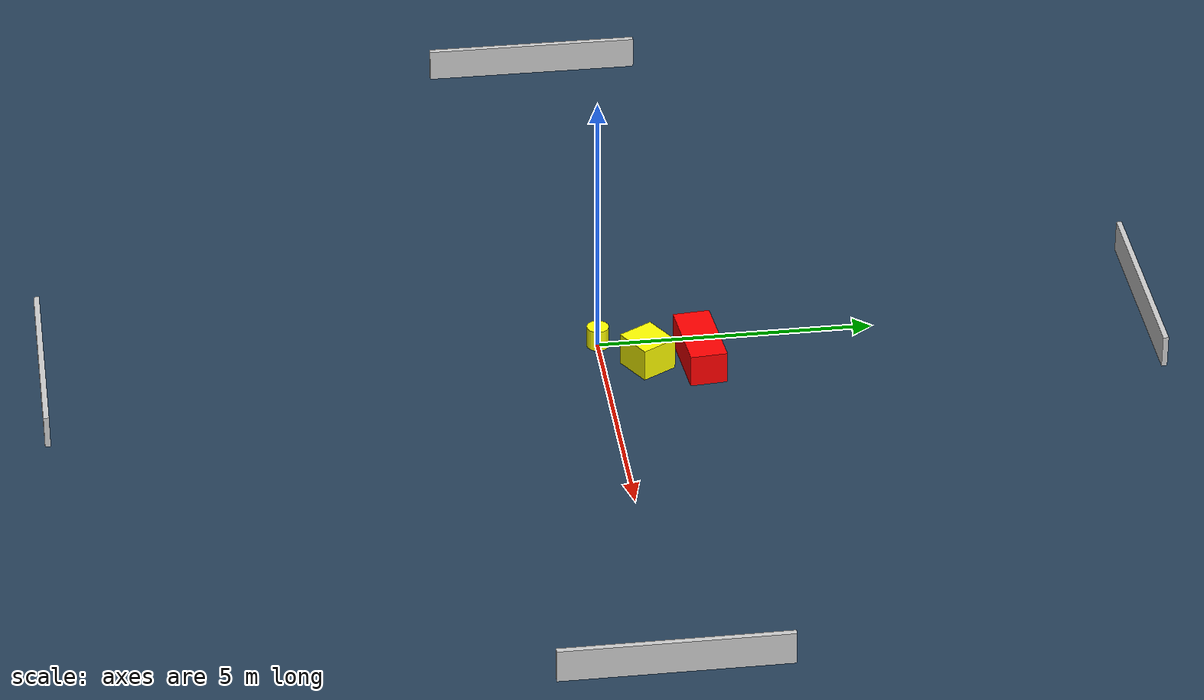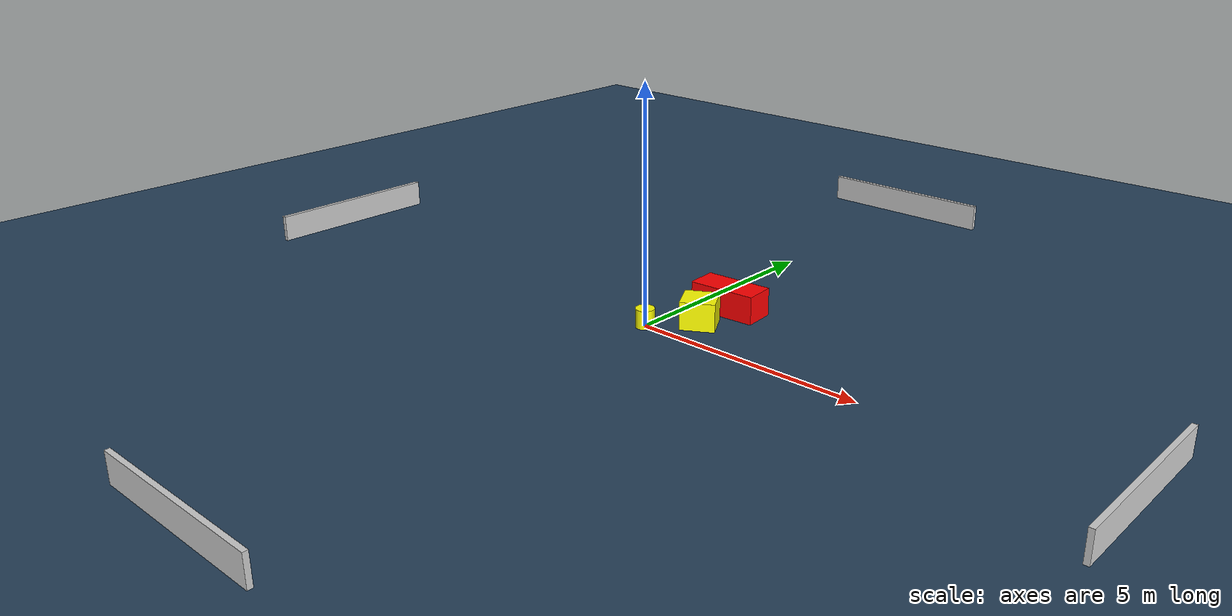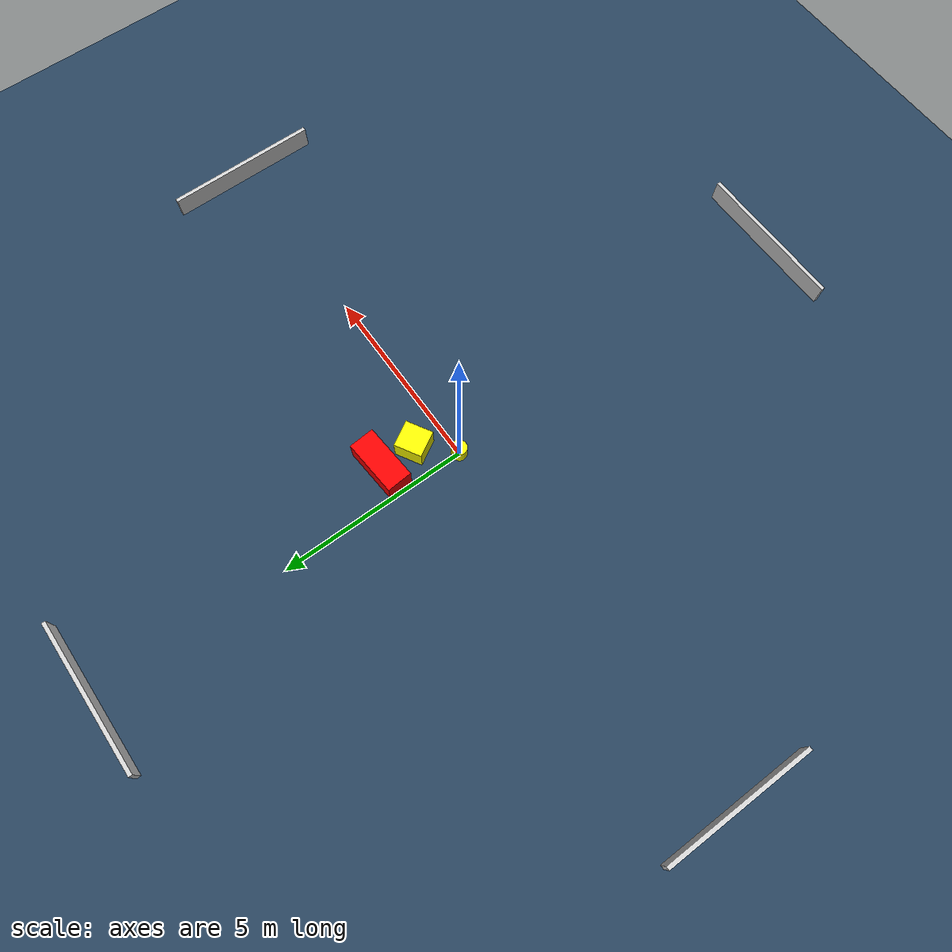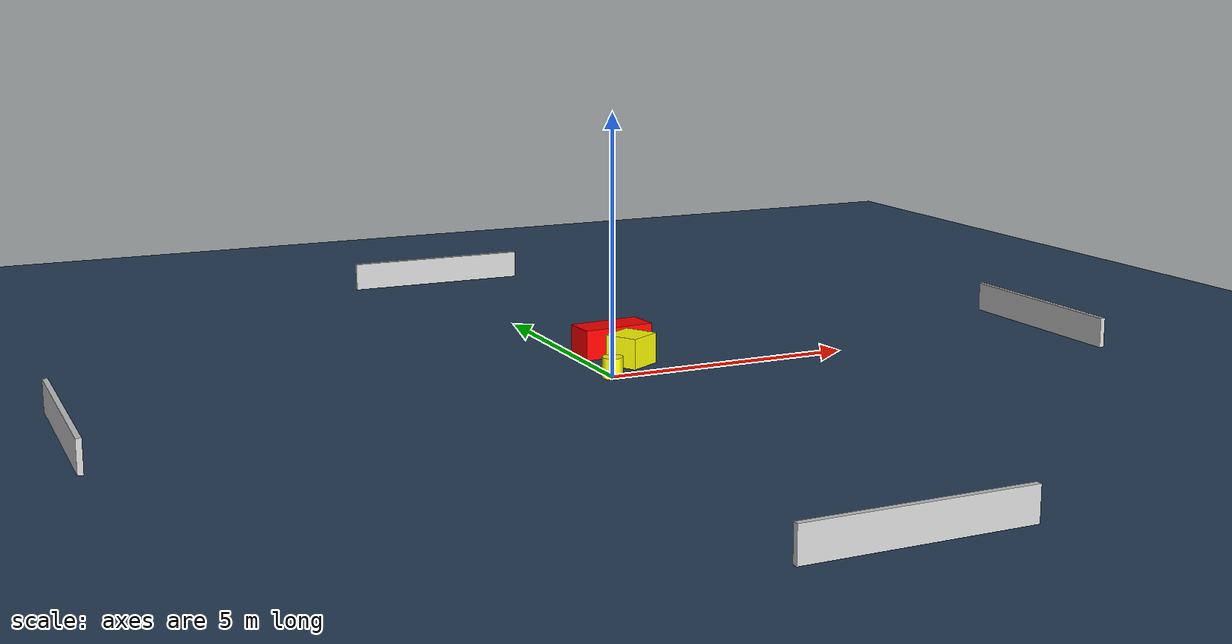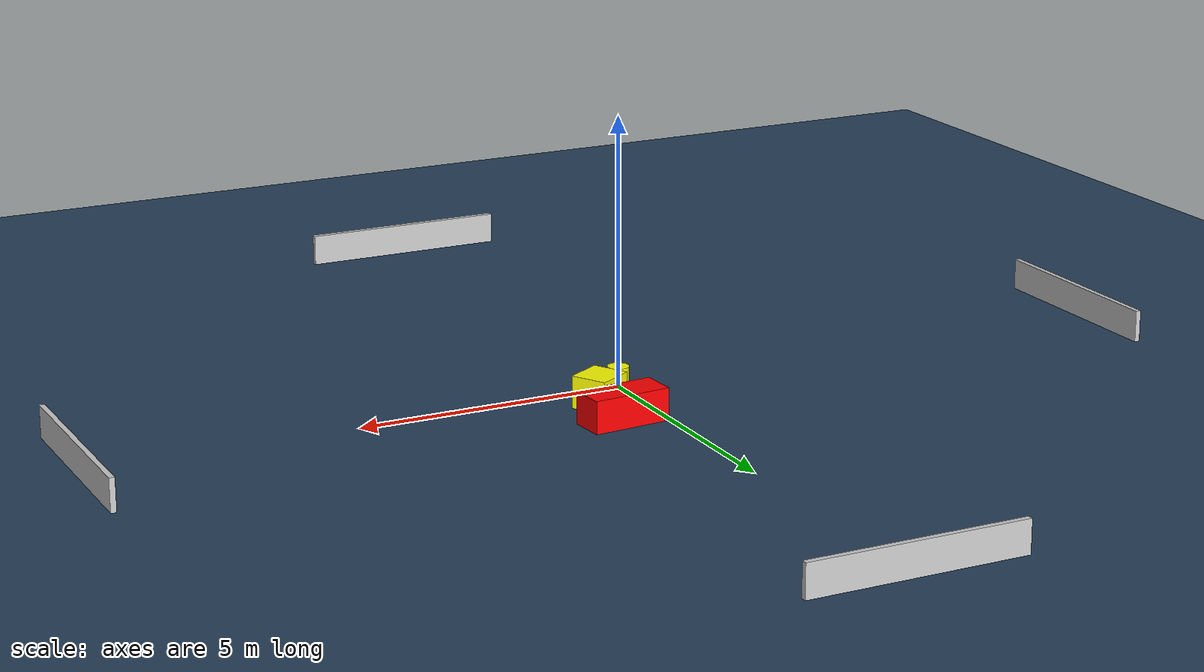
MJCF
<?xml version="1.0" ?>
<mujoco model="generated_environment">
  <option timestep="0.01" integrator="RK4" cone="elliptic"/>
  <default>
    <geom density="1"/>
  </default>
  <asset>
    <texture builtin="gradient" height="3072" name="skybox" rgb1="0.3 0.5 0.7" rgb2="0 0 0" type="skybox" width="512"/>
    <texture builtin="checker" height="300" name="groundplane" rgb1="0.2 0.3 0.4" rgb2="0.1 0.2 0.3" type="2d" width="300"/>
    <material name="groundplane" reflectance="0.2" texrepeat="5 5" texture="groundplane"/>
  </asset>
  <worldbody>
    <light dir="0 0 -1" directional="true" pos="0 0 1.5"/>
    <geom condim="3" friction="0.5 0.005 0.001" material="groundplane" name="floor" pos="0 0 0" size="0 0 0.05" type="plane"/>
    <body name="walls">
      <geom name="wall_1" condim="4" pos="-10.0 0.0 0.3" rgba="0.800000011920929 0.800000011920929 0.800000011920929 1.0" size="0.05 2.0 0.3" type="box"/>
      <geom name="wall_2" condim="4" pos="10.0 0.0 0.3" rgba="0.800000011920929 0.800000011920929 0.800000011920929 1.0" size="0.05 2.0 0.3" type="box"/>
      <geom name="wall_3" condim="4" pos="0.0 -10.0 0.3" rgba="0.800000011920929 0.800000011920929 0.800000011920929 1.0" size="2.0 0.05 0.3" type="box"/>
      <geom name="wall_4" condim="4" pos="0.0 10.0 0.3" rgba="0.800000011920929 0.800000011920929 0.800000011920929 1.0" size="2.0 0.05 0.3" type="box"/>
    </body>
    <body name="robot">
      <joint name="joint_x" type="slide" pos="0 0 0" axis="1 0 0"/>
      <joint name="joint_y" type="slide" pos="0 0 0" axis="0 1 0"/>
      <geom name="robot" type="cylinder" pos="0.0 0.0 0.2" size="0.2 0.2 0.0" mass="5.0" friction="1.0 0.005 0.0001" condim="4" rgba="1.0 1.0 0.0 1.0"/>
    </body>
    <body name="obstacle_1_movable">
      <geom name="obstacle_1_movable" condim="4" pos="0.7670180057652269 0.7979689215386259 0.3" euler="0 0 120.13900568086522" friction="0.0 0.005 0.001" rgba="1.0 1.0 0.0 1.0" size="0.34376926318638323 0.3618005330576516 0.3" type="box" mass="0.1"/>
      <joint type="free"/>
    </body>
    <body name="obstacle_2_static">
      <geom name="obstacle_2_static" condim="4" pos="0.7876410286015685 1.7450884008294718 0.3" euler="0 0 274.46377299189857" friction="0.0 0.005 0.001" rgba="1.0 0.0 0.0 1.0" size="0.334762556936245 0.7332227206209161 0.3" type="box"/>
    </body>
  </worldbody>
  <actuator>
    <motor name="actuator_x" joint="joint_x" gear="1" ctrlrange="-1 1"/>
    <motor name="actuator_y" joint="joint_y" gear="1" ctrlrange="-1 1"/>
  </actuator>
</mujoco>
